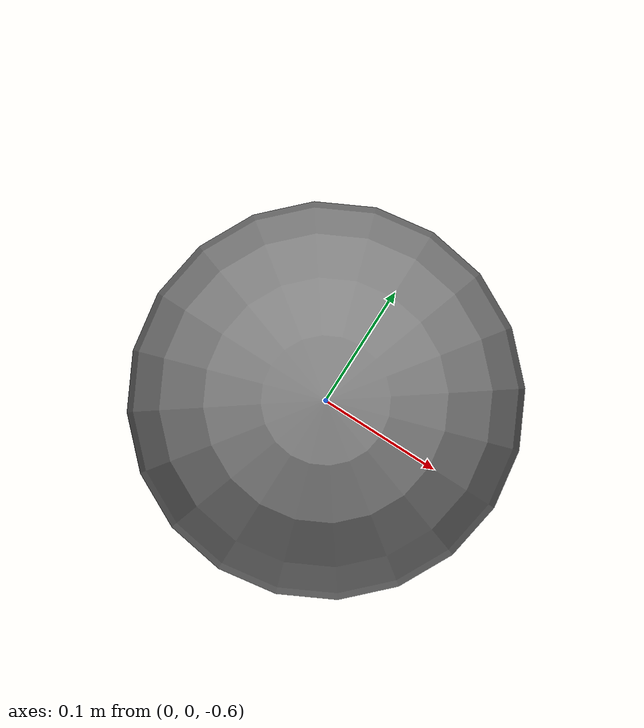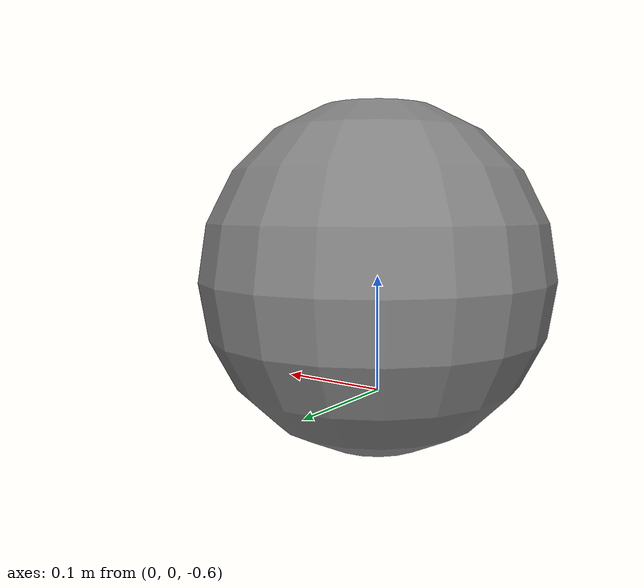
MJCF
<mujoco model="pendulum">
  <compiler inertiafromgeom="false"/>
  <option gravity="0 0 -9.81" timestep="0.001"/>
  <custom>
    <!-- brax physics parameters -->
    <numeric data="1000.0" name="constraint_limit_stiffness"/>
    <numeric data="5000.0" name="constraint_stiffness"/>
    <numeric data="1.0" name="constraint_ang_damping"/>
    <numeric data="2.0" name="constraint_vel_damping"/>
  </custom>
  <worldbody>
    <body name="body1" pos="0 0 0">
      <joint axis="1 0 0" name="hinge1" pos="0 0 0" type="hinge"/>
      <joint axis="0 1 0" name="hinge2" pos="0 0 0" type="hinge"/>
      <joint axis="0 0 1" name="hinge3" pos="0 0 0" type="hinge"/>
      <geom name="sphere1" pos="0.0 0.0 -0.5" size=".15" mass="1" type="sphere"/>
      <inertial pos="0.0 0.0 -0.5" mass="1" diaginertia="1. 1. 1."/>
    </body>
  </worldbody>
  <actuator>
    <position ctrllimited="false" joint="hinge3" gear="10 0 0 0 0 0"/>
    <position ctrllimited="false" joint="hinge1" gear="10 0 0 0 0 0"/>
    <position ctrllimited="false" joint="hinge2" gear="10 0 0 0 0 0"/>
  </actuator>
</mujoco>
